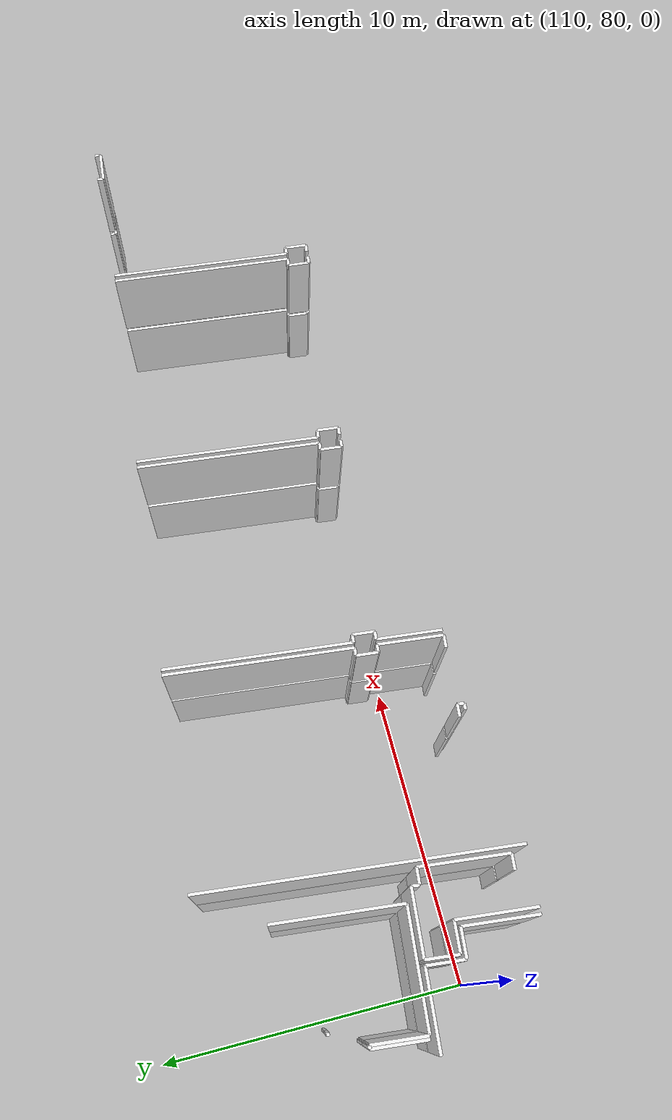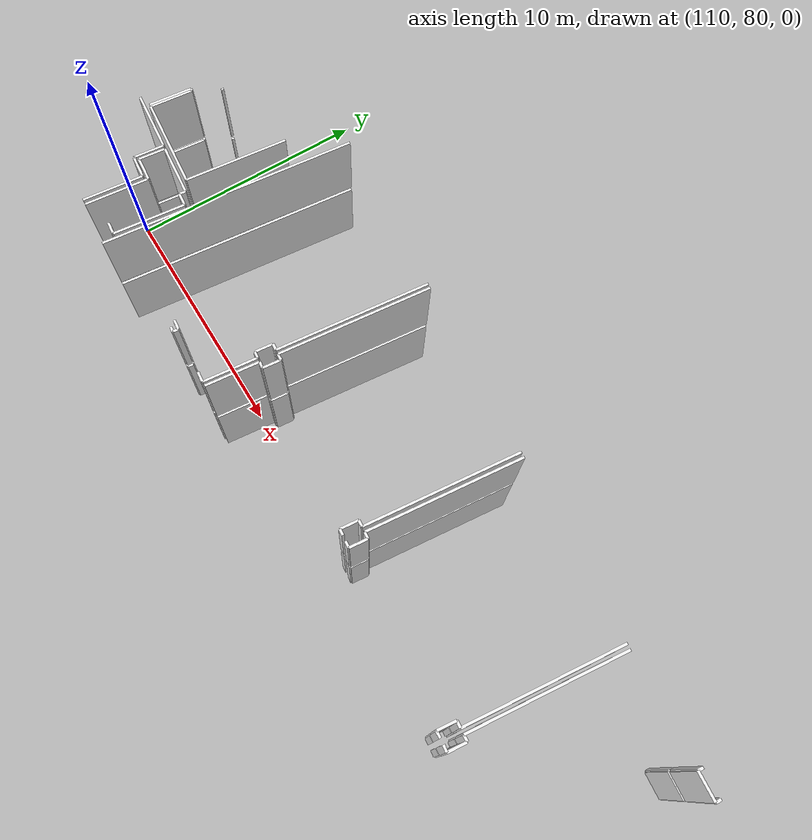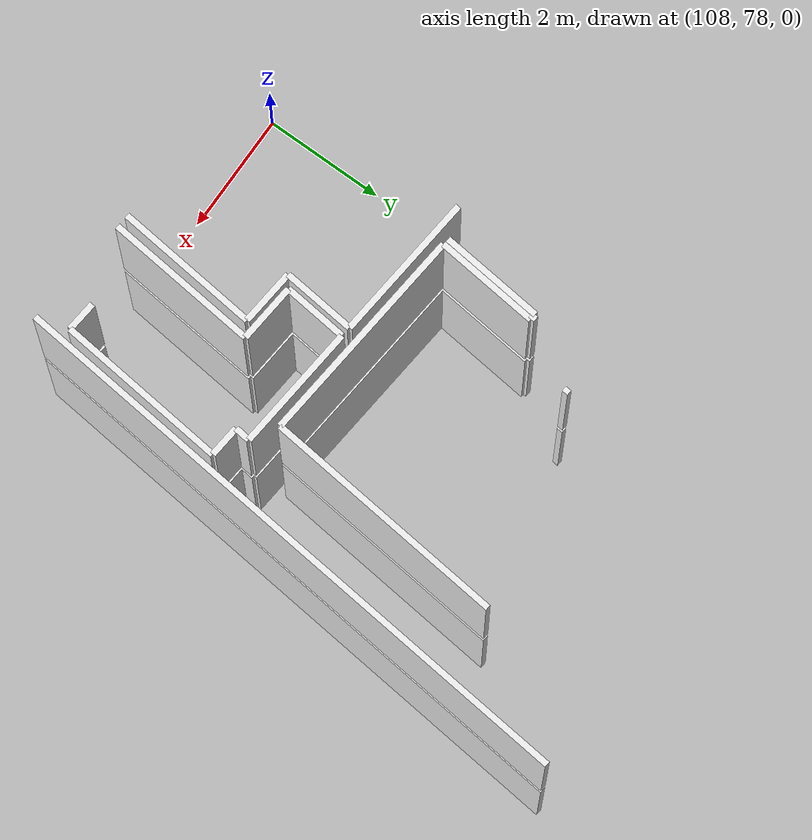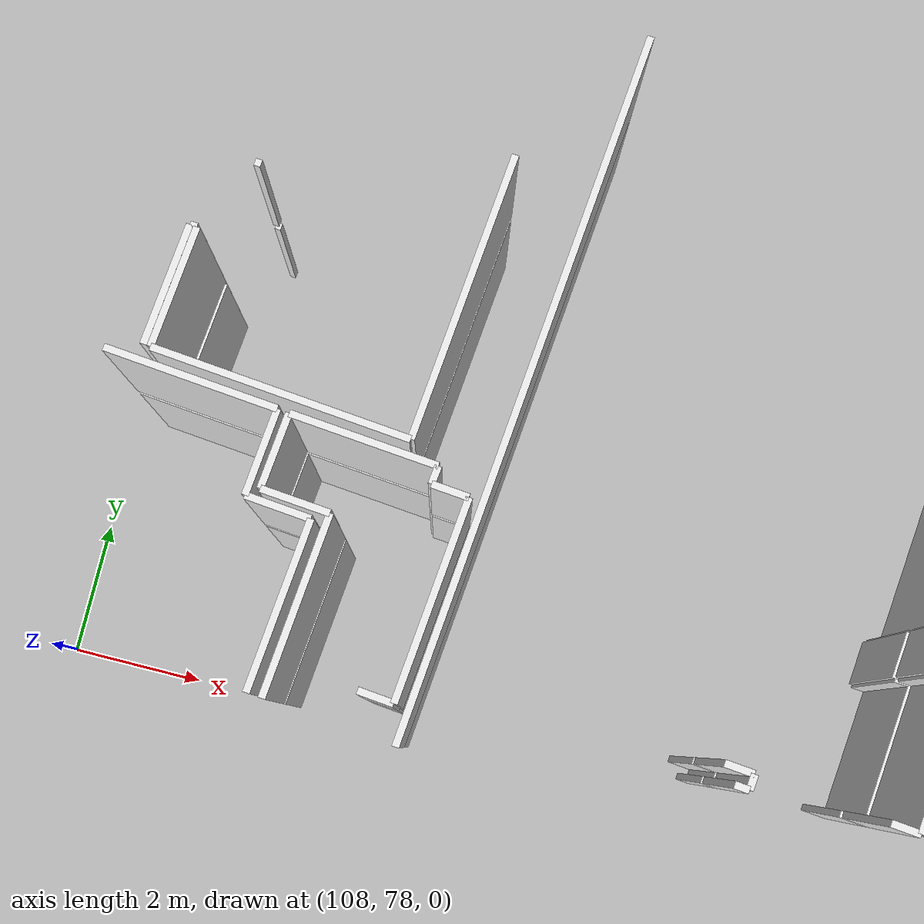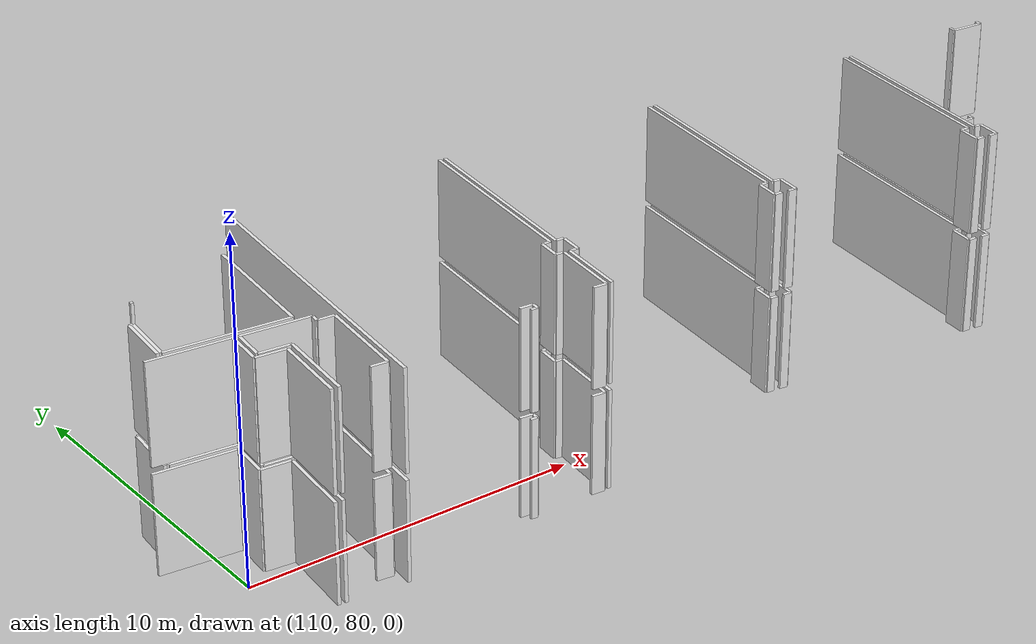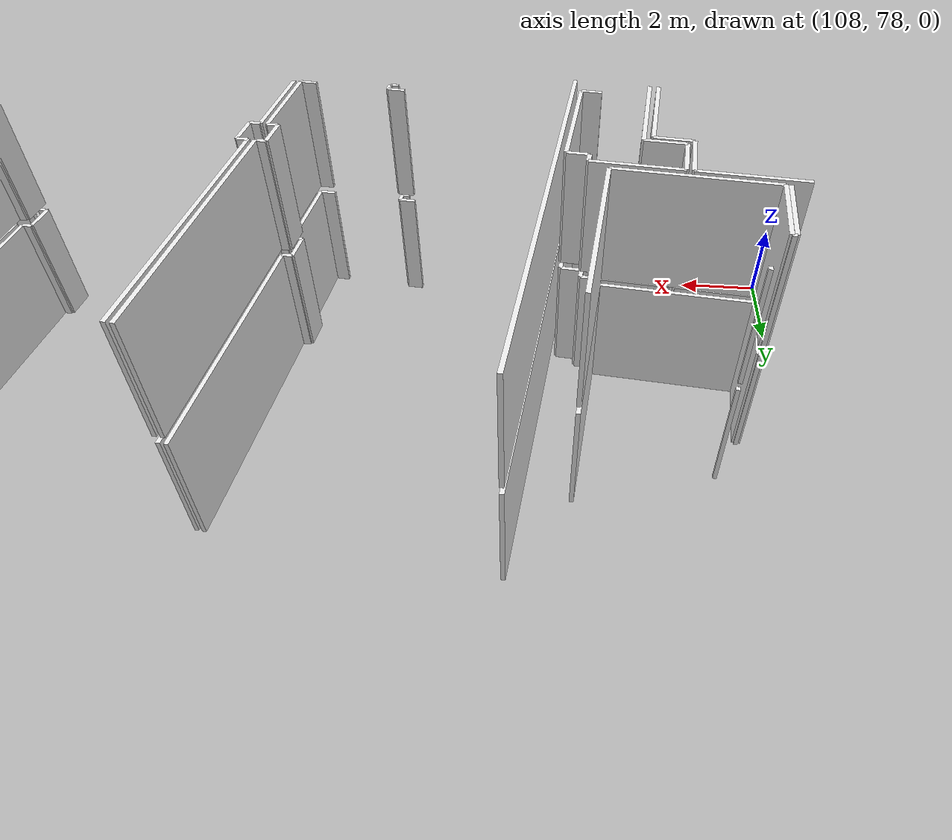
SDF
<sdf version="1.6">
 <world name="default">
  <model name="wall_134.5_79.0_0.0_link">
   <static>true</static>
   <pose>134.5349999999744 78.98500000010245 1.5 0 0 -0.11942892521040878</pose>
   <link name="link">
    <visual name="visual">
     <geometry><box><size>0.2517935662158716 0.1 3</size></box></geometry>
     <material>
      <script><uri>file://media/materials/scripts/gazebo.material</uri><name>Gazebo/White</name></script>
     </material>
    </visual>
   </link>
  </model>
  <model name="wall_134.7_79.3_0.0_link">
   <static>true</static>
   <pose>134.69499999997788 79.32000000006519 1.5 0 0 1.4711276742543362</pose>
   <link name="link">
    <visual name="visual">
     <geometry><box><size>0.7034912932011471 0.1 3</size></box></geometry>
     <material>
      <script><uri>file://media/materials/scripts/gazebo.material</uri><name>Gazebo/White</name></script>
     </material>
    </visual>
   </link>
  </model>
  <model name="wall_134.6_79.7_0.0_link">
   <static>true</static>
   <pose>134.60999999998603 79.67999999993481 1.5 0 0 3.0584514216210654</pose>
   <link name="link">
    <visual name="visual">
     <geometry><box><size>0.2408318915681117 0.1 3</size></box></geometry>
     <material>
      <script><uri>file://media/materials/scripts/gazebo.material</uri><name>Gazebo/White</name></script>
     </material>
    </visual>
   </link>
  </model>
  <model name="wall_134.8_82.6_0.0_link">
   <static>true</static>
   <pose>134.79000000000815 82.63500000000931 1.5 0 0 1.4692789369105257</pose>
   <link name="link">
    <visual name="visual">
     <geometry><box><size>5.920481399479087 0.1 3</size></box></geometry>
     <material>
      <script><uri>file://media/materials/scripts/gazebo.material</uri><name>Gazebo/White</name></script>
     </material>
    </visual>
   </link>
  </model>
  <model name="wall_139.5_85.1_0.0_link">
   <static>true</static>
   <pose>139.54999999998836 85.13000000012107 1.5 0 0 -0.09966865258337218</pose>
   <link name="link">
    <visual name="visual">
     <geometry><box><size>1.004987562121356 0.1 3</size></box></geometry>
     <material>
      <script><uri>file://media/materials/scripts/gazebo.material</uri><name>Gazebo/White</name></script>
     </material>
    </visual>
   </link>
  </model>
  <model name="wall_134.1_79.0_0.0_link">
   <static>true</static>
   <pose>134.08500000002095 79.03000000002794 1.5 0 0 3.061762667803524</pose>
   <link name="link">
    <visual name="visual">
     <geometry><box><size>0.25079872408117443 0.1 3</size></box></geometry>
     <material>
      <script><uri>file://media/materials/scripts/gazebo.material</uri><name>Gazebo/White</name></script>
     </material>
    </visual>
   </link>
  </model>
  <model name="wall_134.0_79.4_0.0_link">
   <static>true</static>
   <pose>133.99500000002445 79.39000000013039 1.5 0 0 1.4711276743202006</pose>
   <link name="link">
    <visual name="visual">
     <geometry><box><size>0.7034912936644975 0.1 3</size></box></geometry>
     <material>
      <script><uri>file://media/materials/scripts/gazebo.material</uri><name>Gazebo/White</name></script>
     </material>
    </visual>
   </link>
  </model>
  <model name="wall_134.2_79.7_0.0_link">
   <static>true</static>
   <pose>134.15500000002794 79.72500000009313 1.5 0 0 -0.11942892704661259</pose>
   <link name="link">
    <visual name="visual">
     <geometry><box><size>0.25179356627135296 0.1 3</size></box></geometry>
     <material>
      <script><uri>file://media/materials/scripts/gazebo.material</uri><name>Gazebo/White</name></script>
     </material>
    </visual>
   </link>
  </model>
  <model name="wall_134.6_82.7_0.0_link">
   <static>true</static>
   <pose>134.5800000000163 82.65999999991618 1.5 0 0 1.4694498235315459</pose>
   <link name="link">
    <visual name="visual">
     <geometry><box><size>5.9304300011780855 0.1 3</size></box></geometry>
     <material>
      <script><uri>file://media/materials/scripts/gazebo.material</uri><name>Gazebo/White</name></script>
     </material>
    </visual>
   </link>
  </model>
  <model name="wall_127.8_83.3_0.0_link">
   <static>true</static>
   <pose>127.79999999998836 83.34499999997206 1.5 0 0 -1.6719725158339418</pose>
   <link name="link">
    <visual name="visual">
     <geometry><box><size>5.940378775484714 0.1 3</size></box></geometry>
     <material>
      <script><uri>file://media/materials/scripts/gazebo.material</uri><name>Gazebo/White</name></script>
     </material>
    </visual>
   </link>
  </model>
  <model name="wall_127.6_80.4_0.0_link">
   <static>true</static>
   <pose>127.625 80.375 1.5 0 0 -0.11942892704661259</pose>
   <link name="link">
    <visual name="visual">
     <geometry><box><size>0.25179356627135296 0.1 3</size></box></geometry>
     <material>
      <script><uri>file://media/materials/scripts/gazebo.material</uri><name>Gazebo/White</name></script>
     </material>
    </visual>
   </link>
  </model>
  <model name="wall_127.7_80.0_0.0_link">
   <static>true</static>
   <pose>127.71499999999651 80.01499999989755 1.5 0 0 -1.6718996985493473</pose>
   <link name="link">
    <visual name="visual">
     <geometry><box><size>0.693541635321099 0.1 3</size></box></geometry>
     <material>
      <script><uri>file://media/materials/scripts/gazebo.material</uri><name>Gazebo/White</name></script>
     </material>
    </visual>
   </link>
  </model>
  <model name="wall_127.6_79.7_0.0_link">
   <static>true</static>
   <pose>127.55499999999302 79.68500000005588 1.5 0 0 3.0221637265431807</pose>
   <link name="link">
    <visual name="visual">
     <geometry><box><size>0.25179356627135296 0.1 3</size></box></geometry>
     <material>
      <script><uri>file://media/materials/scripts/gazebo.material</uri><name>Gazebo/White</name></script>
     </material>
    </visual>
   </link>
  </model>
  <model name="wall_113.4_79.7_0.0_link">
   <static>true</static>
   <pose>113.40499999999884 79.70999999996275 1.5 0 0 1.4668557173961834</pose>
   <link name="link">
    <visual name="visual">
     <geometry><box><size>2.7950849721319257 0.1 3</size></box></geometry>
     <material>
      <script><uri>file://media/materials/scripts/gazebo.material</uri><name>Gazebo/White</name></script>
     </material>
    </visual>
   </link>
  </model>
  <model name="wall_113.3_81.1_0.0_link">
   <static>true</static>
   <pose>113.2949999999837 81.125 1.5 0 0 3.0438657465945953</pose>
   <link name="link">
    <visual name="visual">
     <geometry><box><size>0.512445119003853 0.1 3</size></box></geometry>
     <material>
      <script><uri>file://media/materials/scripts/gazebo.material</uri><name>Gazebo/White</name></script>
     </material>
    </visual>
   </link>
  </model>
  <model name="wall_113.1_81.3_0.0_link">
   <static>true</static>
   <pose>113.05499999999302 81.27499999990687 1.5 0 0 1.451367400666386</pose>
   <link name="link">
    <visual name="visual">
     <geometry><box><size>0.2517935662436123 0.1 3</size></box></geometry>
     <material>
      <script><uri>file://media/materials/scripts/gazebo.material</uri><name>Gazebo/White</name></script>
     </material>
    </visual>
   </link>
  </model>
  <model name="wall_112.1_81.5_0.0_link">
   <static>true</static>
   <pose>112.05000000001746 81.5 1.5 0 0 3.04386574613964</pose>
   <link name="link">
    <visual name="visual">
     <geometry><box><size>2.0497804760483525 0.1 3</size></box></geometry>
     <material>
      <script><uri>file://media/materials/scripts/gazebo.material</uri><name>Gazebo/White</name></script>
     </material>
    </visual>
   </link>
  </model>
  <model name="wall_111.0_81.1_0.0_link">
   <static>true</static>
   <pose>110.97500000000582 81.0800000000745 1.5 0 0 -1.676173766022158</pose>
   <link name="link">
    <visual name="visual">
     <geometry><box><size>1.0458011283639057 0.1 3</size></box></geometry>
     <material>
      <script><uri>file://media/materials/scripts/gazebo.material</uri><name>Gazebo/White</name></script>
     </material>
    </visual>
   </link>
  </model>
  <model name="wall_111.4_80.5_0.0_link">
   <static>true</static>
   <pose>111.39499999998952 80.51500000013039 1.5 0 0 -0.09445493523843698</pose>
   <link name="link">
    <visual name="visual">
     <geometry><box><size>0.9542536350443193 0.1 3</size></box></geometry>
     <material>
      <script><uri>file://media/materials/scripts/gazebo.material</uri><name>Gazebo/White</name></script>
     </material>
    </visual>
   </link>
  </model>
  <model name="wall_111.7_79.2_0.0_link">
   <static>true</static>
   <pose>111.74499999999534 79.22500000009313 1.5 0 0 -1.6708625935702974</pose>
   <link name="link">
    <visual name="visual">
     <geometry><box><size>2.502518731421029 0.1 3</size></box></geometry>
     <material>
      <script><uri>file://media/materials/scripts/gazebo.material</uri><name>Gazebo/White</name></script>
     </material>
    </visual>
   </link>
  </model>
  <model name="wall_113.0_78.3_0.0_link">
   <static>true</static>
   <pose>113.01500000001397 78.34499999997206 1.5 0 0 -0.1016888523293181</pose>
   <link name="link">
    <visual name="visual">
     <geometry><box><size>0.49254441426008755 0.1 3</size></box></geometry>
     <material>
      <script><uri>file://media/materials/scripts/gazebo.material</uri><name>Gazebo/White</name></script>
     </material>
    </visual>
   </link>
  </model>
  <model name="wall_109.7_81.7_0.0_link">
   <static>true</static>
   <pose>109.6699999999837 81.73999999999069 1.5 0 0 3.041924001199486</pose>
   <link name="link">
    <visual name="visual">
     <geometry><box><size>2.411970149068087 0.1 3</size></box></geometry>
     <material>
      <script><uri>file://media/materials/scripts/gazebo.material</uri><name>Gazebo/White</name></script>
     </material>
    </visual>
   </link>
  </model>
  <model name="wall_111.5_79.2_0.0_link">
   <static>true</static>
   <pose>111.52999999999884 79.1699999999255 1.5 0 0 1.4685896086605021</pose>
   <link name="link">
    <visual name="visual">
     <geometry><box><size>2.3522754939262738 0.1 3</size></box></geometry>
     <material>
      <script><uri>file://media/materials/scripts/gazebo.material</uri><name>Gazebo/White</name></script>
     </material>
    </visual>
   </link>
  </model>
  <model name="wall_111.2_80.4_0.0_link">
   <static>true</static>
   <pose>111.20000000001164 80.38500000000931 1.5 0 0 3.041924000752843</pose>
   <link name="link">
    <visual name="visual">
     <geometry><box><size>0.9044888059555555 0.1 3</size></box></geometry>
     <material>
      <script><uri>file://media/materials/scripts/gazebo.material</uri><name>Gazebo/White</name></script>
     </material>
    </visual>
   </link>
  </model>
  <model name="wall_110.8_81.0_0.0_link">
   <static>true</static>
   <pose>110.80999999999767 81.0250000001397 1.5 0 0 1.470295727739453</pose>
   <link name="link">
    <visual name="visual">
     <geometry><box><size>1.1960351164852516 0.1 3</size></box></geometry>
     <material>
      <script><uri>file://media/materials/scripts/gazebo.material</uri><name>Gazebo/White</name></script>
     </material>
    </visual>
   </link>
  </model>
  <model name="wall_109.8_84.7_0.0_link">
   <static>true</static>
   <pose>109.78500000000349 84.73500000010245 1.5 0 0 -0.11065722380033888</pose>
   <link name="link">
    <visual name="visual">
     <geometry><box><size>0.0905538514335692 0.1 3</size></box></geometry>
     <material>
      <script><uri>file://media/materials/scripts/gazebo.material</uri><name>Gazebo/White</name></script>
     </material>
    </visual>
   </link>
  </model>
  <model name="wall_112.8_83.7_0.0_link">
   <static>true</static>
   <pose>112.84500000000116 83.65500000002794 1.5 0 0 -1.6726866492791923</pose>
   <link name="link">
    <visual name="visual">
     <geometry><box><size>4.0309056056823005 0.1 3</size></box></geometry>
     <material>
      <script><uri>file://media/materials/scripts/gazebo.material</uri><name>Gazebo/White</name></script>
     </material>
    </visual>
   </link>
  </model>
  <model name="wall_110.9_81.8_0.0_link">
   <static>true</static>
   <pose>110.85000000000582 81.82999999984168 1.5 0 0 3.041370903846408</pose>
   <link name="link">
    <visual name="visual">
     <geometry><box><size>3.5980550301548777 0.1 3</size></box></geometry>
     <material>
      <script><uri>file://media/materials/scripts/gazebo.material</uri><name>Gazebo/White</name></script>
     </material>
    </visual>
   </link>
  </model>
  <model name="wall_109.1_82.9_0.0_link">
   <static>true</static>
   <pose>109.14499999998952 82.85499999998137 1.5 0 0 1.470541851323015</pose>
   <link name="link">
    <visual name="visual">
     <geometry><box><size>1.698528775552396 0.1 3</size></box></geometry>
     <material>
      <script><uri>file://media/materials/scripts/gazebo.material</uri><name>Gazebo/White</name></script>
     </material>
    </visual>
   </link>
  </model>
  <model name="wall_109.2_83.7_0.0_link">
   <static>true</static>
   <pose>109.17999999999302 83.7050000000745 1.5 0 0 3.0419240032886226</pose>
   <link name="link">
    <visual name="visual">
     <geometry><box><size>0.10049875616580058 0.1 3</size></box></geometry>
     <material>
      <script><uri>file://media/materials/scripts/gazebo.material</uri><name>Gazebo/White</name></script>
     </material>
    </visual>
   </link>
  </model>
  <model name="wall_109.0_82.9_0.0_link">
   <static>true</static>
   <pose>109.0450000000128 82.86499999999069 1.5 0 0 -1.6710508022942177</pose>
   <link name="link">
    <visual name="visual">
     <geometry><box><size>1.698528775089073 0.1 3</size></box></geometry>
     <material>
      <script><uri>file://media/materials/scripts/gazebo.material</uri><name>Gazebo/White</name></script>
     </material>
    </visual>
   </link>
  </model>
  <model name="wall_127.1_79.7_0.0_link">
   <static>true</static>
   <pose>127.10999999998603 79.7300000002142 1.5 0 0 3.0584514216210654</pose>
   <link name="link">
    <visual name="visual">
     <geometry><box><size>0.2408318915681117 0.1 3</size></box></geometry>
     <material>
      <script><uri>file://media/materials/scripts/gazebo.material</uri><name>Gazebo/White</name></script>
     </material>
    </visual>
   </link>
  </model>
  <model name="wall_127.0_80.1_0.0_link">
   <static>true</static>
   <pose>127.02499999999418 80.08500000019558 1.5 0 0 1.469692955040446</pose>
   <link name="link">
    <visual name="visual">
     <geometry><box><size>0.693541635321099 0.1 3</size></box></geometry>
     <material>
      <script><uri>file://media/materials/scripts/gazebo.material</uri><name>Gazebo/White</name></script>
     </material>
    </visual>
   </link>
  </model>
  <model name="wall_127.2_80.4_0.0_link">
   <static>true</static>
   <pose>127.17999999999302 80.42000000015832 1.5 0 0 -0.08314123196872766</pose>
   <link name="link">
    <visual name="visual">
     <geometry><box><size>0.2408318915681117 0.1 3</size></box></geometry>
     <material>
      <script><uri>file://media/materials/scripts/gazebo.material</uri><name>Gazebo/White</name></script>
     </material>
    </visual>
   </link>
  </model>
  <model name="wall_127.6_83.4_0.0_link">
   <static>true</static>
   <pose>127.60000000000582 83.36499999999069 1.5 0 0 1.469620137746103</pose>
   <link name="link">
    <visual name="visual">
     <geometry><box><size>5.940378775490593 0.1 3</size></box></geometry>
     <material>
      <script><uri>file://media/materials/scripts/gazebo.material</uri><name>Gazebo/White</name></script>
     </material>
    </visual>
   </link>
  </model>
  <model name="wall_120.8_84.0_0.0_link">
   <static>true</static>
   <pose>120.82000000000698 84.0449999999255 1.5 0 0 -1.6719725158260241</pose>
   <link name="link">
    <visual name="visual">
     <geometry><box><size>5.940378775947993 0.1 3</size></box></geometry>
     <material>
      <script><uri>file://media/materials/scripts/gazebo.material</uri><name>Gazebo/White</name></script>
     </material>
    </visual>
   </link>
  </model>
  <model name="wall_120.6_81.1_0.0_link">
   <static>true</static>
   <pose>120.64500000001863 81.07999999984168 1.5 0 0 -0.07982998578626932</pose>
   <link name="link">
    <visual name="visual">
     <geometry><box><size>0.25079872408117443 0.1 3</size></box></geometry>
     <material>
      <script><uri>file://media/materials/scripts/gazebo.material</uri><name>Gazebo/White</name></script>
     </material>
    </visual>
   </link>
  </model>
  <model name="wall_120.7_80.7_0.0_link">
   <static>true</static>
   <pose>120.73500000001513 80.71999999997206 1.5 0 0 -1.670464979335457</pose>
   <link name="link">
    <visual name="visual">
     <geometry><box><size>0.7034912932011471 0.1 3</size></box></geometry>
     <material>
      <script><uri>file://media/materials/scripts/gazebo.material</uri><name>Gazebo/White</name></script>
     </material>
    </visual>
   </link>
  </model>
  <model name="wall_120.6_80.4_0.0_link">
   <static>true</static>
   <pose>120.57500000001164 80.38500000000931 1.5 0 0 3.0221637283793843</pose>
   <link name="link">
    <visual name="visual">
     <geometry><box><size>0.2517935662158716 0.1 3</size></box></geometry>
     <material>
      <script><uri>file://media/materials/scripts/gazebo.material</uri><name>Gazebo/White</name></script>
     </material>
    </visual>
   </link>
  </model>
  <model name="wall_120.3_79.4_0.0_link">
   <static>true</static>
   <pose>120.34500000000116 79.36999999987893 1.5 0 0 -1.672387129737302</pose>
   <link name="link">
    <visual name="visual">
     <geometry><box><size>2.070676218108235 0.1 3</size></box></geometry>
     <material>
      <script><uri>file://media/materials/scripts/gazebo.material</uri><name>Gazebo/White</name></script>
     </material>
    </visual>
   </link>
  </model>
  <model name="wall_119.9_78.4_0.0_link">
   <static>true</static>
   <pose>119.86999999999534 78.37000000011176 1.5 0 0 -0.09966865257760905</pose>
   <link name="link">
    <visual name="visual">
     <geometry><box><size>0.40199502487170996 0.1 3</size></box></geometry>
     <material>
      <script><uri>file://media/materials/scripts/gazebo.material</uri><name>Gazebo/White</name></script>
     </material>
    </visual>
   </link>
  </model>
  <model name="wall_120.2_79.4_0.0_link">
   <static>true</static>
   <pose>120.17500000001746 79.38500000000931 1.5 0 0 1.469692955040446</pose>
   <link name="link">
    <visual name="visual">
     <geometry><box><size>2.0806249059632975 0.1 3</size></box></geometry>
     <material>
      <script><uri>file://media/materials/scripts/gazebo.material</uri><name>Gazebo/White</name></script>
     </material>
    </visual>
   </link>
  </model>
  <model name="wall_120.2_80.4_0.0_link">
   <static>true</static>
   <pose>120.15500000002794 80.42999999993481 1.5 0 0 3.061762667803524</pose>
   <link name="link">
    <visual name="visual">
     <geometry><box><size>0.25079872408117443 0.1 3</size></box></geometry>
     <material>
      <script><uri>file://media/materials/scripts/gazebo.material</uri><name>Gazebo/White</name></script>
     </material>
    </visual>
   </link>
  </model>
  <model name="wall_120.1_80.8_0.0_link">
   <static>true</static>
   <pose>120.06500000000233 80.78499999991618 1.5 0 0 1.4696929551239455</pose>
   <link name="link">
    <visual name="visual">
     <geometry><box><size>0.6935416353152241 0.1 3</size></box></geometry>
     <material>
      <script><uri>file://media/materials/scripts/gazebo.material</uri><name>Gazebo/White</name></script>
     </material>
    </visual>
   </link>
  </model>
  <model name="wall_120.2_81.1_0.0_link">
   <static>true</static>
   <pose>120.22499999997672 81.11999999987893 1.5 0 0 -0.07982998578626932</pose>
   <link name="link">
    <visual name="visual">
     <geometry><box><size>0.25079872408117443 0.1 3</size></box></geometry>
     <material>
      <script><uri>file://media/materials/scripts/gazebo.material</uri><name>Gazebo/White</name></script>
     </material>
    </visual>
   </link>
  </model>
  <model name="wall_120.6_84.1_0.0_link">
   <static>true</static>
   <pose>120.64999999999418 84.06499999994412 1.5 0 0 1.4696201377540206</pose>
   <link name="link">
    <visual name="visual">
     <geometry><box><size>5.940378775953872 0.1 3</size></box></geometry>
     <material>
      <script><uri>file://media/materials/scripts/gazebo.material</uri><name>Gazebo/White</name></script>
     </material>
    </visual>
   </link>
  </model>
  <model name="wall_113.9_82.7_0.0_link">
   <static>true</static>
   <pose>113.90999999997439 82.73999999999069 1.5 0 0 -1.6716673835126197</pose>
   <link name="link">
    <visual name="visual">
     <geometry><box><size>9.93047833727022 0.1 3</size></box></geometry>
     <material>
      <script><uri>file://media/materials/scripts/gazebo.material</uri><name>Gazebo/White</name></script>
     </material>
    </visual>
   </link>
  </model>
  <model name="wall_117.7_78.6_0.0_link">
   <static>true</static>
   <pose>117.67999999999302 78.58999999985099 1.5 0 0 -0.09966865257760905</pose>
   <link name="link">
    <visual name="visual">
     <geometry><box><size>0.40199502487170996 0.1 3</size></box></geometry>
     <material>
      <script><uri>file://media/materials/scripts/gazebo.material</uri><name>Gazebo/White</name></script>
     </material>
    </visual>
   </link>
  </model>
  <model name="wall_117.9_78.5_0.0_link">
   <static>true</static>
   <pose>117.86999999999534 78.46499999985099 1.5 0 0 -1.665748033242296</pose>
   <link name="link">
    <visual name="visual">
     <geometry><box><size>0.21095023106197072 0.1 3</size></box></geometry>
     <material>
      <script><uri>file://media/materials/scripts/gazebo.material</uri><name>Gazebo/White</name></script>
     </material>
    </visual>
   </link>
  </model>
  <model name="wall_117.8_78.4_0.0_link">
   <static>true</static>
   <pose>117.75999999998021 78.36999999987893 1.5 0 0 3.0419240010121844</pose>
   <link name="link">
    <visual name="visual">
     <geometry><box><size>0.20099751243585498 0.1 3</size></box></geometry>
     <material>
      <script><uri>file://media/materials/scripts/gazebo.material</uri><name>Gazebo/White</name></script>
     </material>
    </visual>
   </link>
  </model>
  <model name="wall_139.1_85.3_0.0_link">
   <static>true</static>
   <pose>139.05999999999767 85.28000000002794 1.5 0 0 -1.670464979516584</pose>
   <link name="link">
    <visual name="visual">
     <geometry><box><size>0.20099751214626105 0.1 3</size></box></geometry>
     <material>
      <script><uri>file://media/materials/scripts/gazebo.material</uri><name>Gazebo/White</name></script>
     </material>
    </visual>
   </link>
  </model>
  <model name="wall_140.1_85.2_0.0_link">
   <static>true</static>
   <pose>140.05999999999767 85.17999999993481 1.5 0 0 1.471127674073209</pose>
   <link name="link">
    <visual name="visual">
     <geometry><box><size>0.20099751214626105 0.1 3</size></box></geometry>
     <material>
      <script><uri>file://media/materials/scripts/gazebo.material</uri><name>Gazebo/White</name></script>
     </material>
    </visual>
   </link>
  </model>
  <model name="wall_134.5_79.0_3.2_link">
   <static>true</static>
   <pose>134.5349999999744 78.98500000010245 4.7 0 0 -0.11942892521040878</pose>
   <link name="link">
    <visual name="visual">
     <geometry><box><size>0.2517935662158716 0.1 3</size></box></geometry>
     <material>
      <script><uri>file://media/materials/scripts/gazebo.material</uri><name>Gazebo/White</name></script>
     </material>
    </visual>
   </link>
  </model>
  <model name="wall_134.7_79.3_3.2_link">
   <static>true</static>
   <pose>134.69499999997788 79.32000000006519 4.7 0 0 1.4711276742543362</pose>
   <link name="link">
    <visual name="visual">
     <geometry><box><size>0.7034912932011471 0.1 3</size></box></geometry>
     <material>
      <script><uri>file://media/materials/scripts/gazebo.material</uri><name>Gazebo/White</name></script>
     </material>
    </visual>
   </link>
  </model>
  <model name="wall_134.6_79.7_3.2_link">
   <static>true</static>
   <pose>134.60999999998603 79.67999999993481 4.7 0 0 3.0584514216210654</pose>
   <link name="link">
    <visual name="visual">
     <geometry><box><size>0.2408318915681117 0.1 3</size></box></geometry>
     <material>
      <script><uri>file://media/materials/scripts/gazebo.material</uri><name>Gazebo/White</name></script>
     </material>
    </visual>
   </link>
  </model>
  <model name="wall_134.8_82.6_3.2_link">
   <static>true</static>
   <pose>134.79000000000815 82.63500000000931 4.7 0 0 1.4692789369105257</pose>
   <link name="link">
    <visual name="visual">
     <geometry><box><size>5.920481399479087 0.1 3</size></box></geometry>
     <material>
      <script><uri>file://media/materials/scripts/gazebo.material</uri><name>Gazebo/White</name></script>
     </material>
    </visual>
   </link>
  </model>
  <model name="wall_139.5_85.1_3.2_link">
   <static>true</static>
   <pose>139.54999999998836 85.13000000012107 4.7 0 0 -0.09966865258337218</pose>
   <link name="link">
    <visual name="visual">
     <geometry><box><size>1.004987562121356 0.1 3</size></box></geometry>
     <material>
      <script><uri>file://media/materials/scripts/gazebo.material</uri><name>Gazebo/White</name></script>
     </material>
    </visual>
   </link>
  </model>
  <model name="wall_134.1_79.0_3.2_link">
   <static>true</static>
   <pose>134.08500000002095 79.03000000002794 4.7 0 0 3.061762667803524</pose>
   <link name="link">
    <visual name="visual">
     <geometry><box><size>0.25079872408117443 0.1 3</size></box></geometry>
     <material>
      <script><uri>file://media/materials/scripts/gazebo.material</uri><name>Gazebo/White</name></script>
     </material>
    </visual>
   </link>
  </model>
  <model name="wall_134.0_79.4_3.2_link">
   <static>true</static>
   <pose>133.99500000002445 79.39000000013039 4.7 0 0 1.4711276743202006</pose>
   <link name="link">
    <visual name="visual">
     <geometry><box><size>0.7034912936644975 0.1 3</size></box></geometry>
     <material>
      <script><uri>file://media/materials/scripts/gazebo.material</uri><name>Gazebo/White</name></script>
     </material>
    </visual>
   </link>
  </model>
  <model name="wall_134.2_79.7_3.2_link">
   <static>true</static>
   <pose>134.15500000002794 79.72500000009313 4.7 0 0 -0.11942892704661259</pose>
   <link name="link">
    <visual name="visual">
     <geometry><box><size>0.25179356627135296 0.1 3</size></box></geometry>
     <material>
      <script><uri>file://media/materials/scripts/gazebo.material</uri><name>Gazebo/White</name></script>
     </material>
    </visual>
   </link>
  </model>
  <model name="wall_134.6_82.7_3.2_link">
   <static>true</static>
   <pose>134.5800000000163 82.65999999991618 4.7 0 0 1.4694498235315459</pose>
   <link name="link">
    <visual name="visual">
     <geometry><box><size>5.9304300011780855 0.1 3</size></box></geometry>
     <material>
      <script><uri>file://media/materials/scripts/gazebo.material</uri><name>Gazebo/White</name></script>
     </material>
    </visual>
   </link>
  </model>
  <model name="wall_127.8_83.3_3.2_link">
   <static>true</static>
   <pose>127.79999999998836 83.34499999997206 4.7 0 0 -1.6719725158339418</pose>
   <link name="link">
    <visual name="visual">
     <geometry><box><size>5.940378775484714 0.1 3</size></box></geometry>
     <material>
      <script><uri>file://media/materials/scripts/gazebo.material</uri><name>Gazebo/White</name></script>
     </material>
    </visual>
   </link>
  </model>
  <model name="wall_127.6_80.4_3.2_link">
   <static>true</static>
   <pose>127.625 80.375 4.7 0 0 -0.11942892704661259</pose>
   <link name="link">
    <visual name="visual">
     <geometry><box><size>0.25179356627135296 0.1 3</size></box></geometry>
     <material>
      <script><uri>file://media/materials/scripts/gazebo.material</uri><name>Gazebo/White</name></script>
     </material>
    </visual>
   </link>
  </model>
  <model name="wall_127.7_80.0_3.2_link">
   <static>true</static>
   <pose>127.71499999999651 80.01499999989755 4.7 0 0 -1.6718996985493473</pose>
   <link name="link">
    <visual name="visual">
     <geometry><box><size>0.693541635321099 0.1 3</size></box></geometry>
     <material>
      <script><uri>file://media/materials/scripts/gazebo.material</uri><name>Gazebo/White</name></script>
     </material>
    </visual>
   </link>
  </model>
  <model name="wall_127.6_79.7_3.2_link">
   <static>true</static>
   <pose>127.55499999999302 79.68500000005588 4.7 0 0 3.0221637265431807</pose>
   <link name="link">
    <visual name="visual">
     <geometry><box><size>0.25179356627135296 0.1 3</size></box></geometry>
     <material>
      <script><uri>file://media/materials/scripts/gazebo.material</uri><name>Gazebo/White</name></script>
     </material>
    </visual>
   </link>
  </model>
  <model name="wall_113.4_79.7_3.2_link">
   <static>true</static>
   <pose>113.40499999999884 79.70999999996275 4.7 0 0 1.4668557173961834</pose>
   <link name="link">
    <visual name="visual">
     <geometry><box><size>2.7950849721319257 0.1 3</size></box></geometry>
     <material>
      <script><uri>file://media/materials/scripts/gazebo.material</uri><name>Gazebo/White</name></script>
     </material>
    </visual>
   </link>
  </model>
  <model name="wall_113.3_81.1_3.2_link">
   <static>true</static>
   <pose>113.2949999999837 81.125 4.7 0 0 3.0438657465945953</pose>
   <link name="link">
    <visual name="visual">
     <geometry><box><size>0.512445119003853 0.1 3</size></box></geometry>
     <material>
      <script><uri>file://media/materials/scripts/gazebo.material</uri><name>Gazebo/White</name></script>
     </material>
    </visual>
   </link>
  </model>
  <model name="wall_113.1_81.3_3.2_link">
   <static>true</static>
   <pose>113.05499999999302 81.27499999990687 4.7 0 0 1.451367400666386</pose>
   <link name="link">
    <visual name="visual">
     <geometry><box><size>0.2517935662436123 0.1 3</size></box></geometry>
     <material>
      <script><uri>file://media/materials/scripts/gazebo.material</uri><name>Gazebo/White</name></script>
     </material>
    </visual>
   </link>
  </model>
  <model name="wall_112.1_81.5_3.2_link">
   <static>true</static>
   <pose>112.05000000001746 81.5 4.7 0 0 3.04386574613964</pose>
   <link name="link">
    <visual name="visual">
     <geometry><box><size>2.0497804760483525 0.1 3</size></box></geometry>
     <material>
      <script><uri>file://media/materials/scripts/gazebo.material</uri><name>Gazebo/White</name></script>
     </material>
    </visual>
   </link>
  </model>
  <model name="wall_111.0_81.1_3.2_link">
   <static>true</static>
   <pose>110.97500000000582 81.0800000000745 4.7 0 0 -1.676173766022158</pose>
   <link name="link">
    <visual name="visual">
     <geometry><box><size>1.0458011283639057 0.1 3</size></box></geometry>
     <material>
      <script><uri>file://media/materials/scripts/gazebo.material</uri><name>Gazebo/White</name></script>
     </material>
    </visual>
   </link>
  </model>
  <model name="wall_111.4_80.5_3.2_link">
   <static>true</static>
   <pose>111.39499999998952 80.51500000013039 4.7 0 0 -0.09445493523843698</pose>
   <link name="link">
    <visual name="visual">
     <geometry><box><size>0.9542536350443193 0.1 3</size></box></geometry>
     <material>
      <script><uri>file://media/materials/scripts/gazebo.material</uri><name>Gazebo/White</name></script>
     </material>
    </visual>
   </link>
  </model>
  <model name="wall_111.7_79.2_3.2_link">
   <static>true</static>
   <pose>111.74499999999534 79.22500000009313 4.7 0 0 -1.6708625935702974</pose>
   <link name="link">
    <visual name="visual">
     <geometry><box><size>2.502518731421029 0.1 3</size></box></geometry>
     <material>
      <script><uri>file://media/materials/scripts/gazebo.material</uri><name>Gazebo/White</name></script>
     </material>
    </visual>
   </link>
  </model>
  <model name="wall_113.0_78.3_3.2_link">
   <static>true</static>
   <pose>113.01500000001397 78.34499999997206 4.7 0 0 -0.1016888523293181</pose>
   <link name="link">
    <visual name="visual">
     <geometry><box><size>0.49254441426008755 0.1 3</size></box></geometry>
     <material>
      <script><uri>file://media/materials/scripts/gazebo.material</uri><name>Gazebo/White</name></script>
     </material>
    </visual>
   </link>
  </model>
  <model name="wall_109.7_81.7_3.2_link">
   <static>true</static>
   <pose>109.6699999999837 81.73999999999069 4.7 0 0 3.041924001199486</pose>
   <link name="link">
    <visual name="visual">
     <geometry><box><size>2.411970149068087 0.1 3</size></box></geometry>
     <material>
      <script><uri>file://media/materials/scripts/gazebo.material</uri><name>Gazebo/White</name></script>
     </material>
    </visual>
   </link>
  </model>
  <model name="wall_111.5_79.2_3.2_link">
   <static>true</static>
   <pose>111.52999999999884 79.1699999999255 4.7 0 0 1.4685896086605021</pose>
   <link name="link">
    <visual name="visual">
     <geometry><box><size>2.3522754939262738 0.1 3</size></box></geometry>
     <material>
      <script><uri>file://media/materials/scripts/gazebo.material</uri><name>Gazebo/White</name></script>
     </material>
    </visual>
   </link>
  </model>
  <model name="wall_111.2_80.4_3.2_link">
   <static>true</static>
   <pose>111.20000000001164 80.38500000000931 4.7 0 0 3.041924000752843</pose>
   <link name="link">
    <visual name="visual">
     <geometry><box><size>0.9044888059555555 0.1 3</size></box></geometry>
     <material>
      <script><uri>file://media/materials/scripts/gazebo.material</uri><name>Gazebo/White</name></script>
     </material>
    </visual>
   </link>
  </model>
  <model name="wall_110.8_81.0_3.2_link">
   <static>true</static>
   <pose>110.80999999999767 81.0250000001397 4.7 0 0 1.470295727739453</pose>
   <link name="link">
    <visual name="visual">
     <geometry><box><size>1.1960351164852516 0.1 3</size></box></geometry>
     <material>
      <script><uri>file://media/materials/scripts/gazebo.material</uri><name>Gazebo/White</name></script>
     </material>
    </visual>
   </link>
  </model>
  <model name="wall_109.8_84.7_3.2_link">
   <static>true</static>
   <pose>109.78500000000349 84.73500000010245 4.7 0 0 -0.11065722380033888</pose>
   <link name="link">
    <visual name="visual">
     <geometry><box><size>0.0905538514335692 0.1 3</size></box></geometry>
     <material>
      <script><uri>file://media/materials/scripts/gazebo.material</uri><name>Gazebo/White</name></script>
     </material>
    </visual>
   </link>
  </model>
  <model name="wall_112.8_83.7_3.2_link">
   <static>true</static>
   <pose>112.84500000000116 83.65500000002794 4.7 0 0 -1.6726866492791923</pose>
   <link name="link">
    <visual name="visual">
     <geometry><box><size>4.0309056056823005 0.1 3</size></box></geometry>
     <material>
      <script><uri>file://media/materials/scripts/gazebo.material</uri><name>Gazebo/White</name></script>
     </material>
    </visual>
   </link>
  </model>
  <model name="wall_110.9_81.8_3.2_link">
   <static>true</static>
   <pose>110.85000000000582 81.82999999984168 4.7 0 0 3.041370903846408</pose>
   <link name="link">
    <visual name="visual">
     <geometry><box><size>3.5980550301548777 0.1 3</size></box></geometry>
     <material>
      <script><uri>file://media/materials/scripts/gazebo.material</uri><name>Gazebo/White</name></script>
     </material>
    </visual>
   </link>
  </model>
  <model name="wall_109.1_82.9_3.2_link">
   <static>true</static>
   <pose>109.14499999998952 82.85499999998137 4.7 0 0 1.470541851323015</pose>
   <link name="link">
    <visual name="visual">
     <geometry><box><size>1.698528775552396 0.1 3</size></box></geometry>
     <material>
      <script><uri>file://media/materials/scripts/gazebo.material</uri><name>Gazebo/White</name></script>
     </material>
    </visual>
   </link>
  </model>
  <model name="wall_109.2_83.7_3.2_link">
   <static>true</static>
   <pose>109.17999999999302 83.7050000000745 4.7 0 0 3.0419240032886226</pose>
   <link name="link">
    <visual name="visual">
     <geometry><box><size>0.10049875616580058 0.1 3</size></box></geometry>
     <material>
      <script><uri>file://media/materials/scripts/gazebo.material</uri><name>Gazebo/White</name></script>
     </material>
    </visual>
   </link>
  </model>
  <model name="wall_109.0_82.9_3.2_link">
   <static>true</static>
   <pose>109.0450000000128 82.86499999999069 4.7 0 0 -1.6710508022942177</pose>
   <link name="link">
    <visual name="visual">
     <geometry><box><size>1.698528775089073 0.1 3</size></box></geometry>
     <material>
      <script><uri>file://media/materials/scripts/gazebo.material</uri><name>Gazebo/White</name></script>
     </material>
    </visual>
   </link>
  </model>
  <model name="wall_127.1_79.7_3.2_link">
   <static>true</static>
   <pose>127.10999999998603 79.7300000002142 4.7 0 0 3.0584514216210654</pose>
   <link name="link">
    <visual name="visual">
     <geometry><box><size>0.2408318915681117 0.1 3</size></box></geometry>
     <material>
      <script><uri>file://media/materials/scripts/gazebo.material</uri><name>Gazebo/White</name></script>
     </material>
    </visual>
   </link>
  </model>
  <model name="wall_127.0_80.1_3.2_link">
   <static>true</static>
   <pose>127.02499999999418 80.08500000019558 4.7 0 0 1.469692955040446</pose>
   <link name="link">
    <visual name="visual">
     <geometry><box><size>0.693541635321099 0.1 3</size></box></geometry>
     <material>
      <script><uri>file://media/materials/scripts/gazebo.material</uri><name>Gazebo/White</name></script>
     </material>
    </visual>
   </link>
  </model>
  <model name="wall_127.2_80.4_3.2_link">
   <static>true</static>
   <pose>127.17999999999302 80.42000000015832 4.7 0 0 -0.08314123196872766</pose>
   <link name="link">
    <visual name="visual">
     <geometry><box><size>0.2408318915681117 0.1 3</size></box></geometry>
     <material>
      <script><uri>file://media/materials/scripts/gazebo.material</uri><name>Gazebo/White</name></script>
     </material>
    </visual>
   </link>
  </model>
  <model name="wall_127.6_83.4_3.2_link">
   <static>true</static>
   <pose>127.60000000000582 83.36499999999069 4.7 0 0 1.469620137746103</pose>
   <link name="link">
    <visual name="visual">
     <geometry><box><size>5.940378775490593 0.1 3</size></box></geometry>
     <material>
      <script><uri>file://media/materials/scripts/gazebo.material</uri><name>Gazebo/White</name></script>
     </material>
    </visual>
   </link>
  </model>
  <model name="wall_120.8_84.0_3.2_link">
   <static>true</static>
   <pose>120.82000000000698 84.0449999999255 4.7 0 0 -1.6719725158260241</pose>
   <link name="link">
    <visual name="visual">
     <geometry><box><size>5.940378775947993 0.1 3</size></box></geometry>
     <material>
      <script><uri>file://media/materials/scripts/gazebo.material</uri><name>Gazebo/White</name></script>
     </material>
    </visual>
   </link>
  </model>
  <model name="wall_120.6_81.1_3.2_link">
   <static>true</static>
   <pose>120.64500000001863 81.07999999984168 4.7 0 0 -0.07982998578626932</pose>
   <link name="link">
    <visual name="visual">
     <geometry><box><size>0.25079872408117443 0.1 3</size></box></geometry>
     <material>
      <script><uri>file://media/materials/scripts/gazebo.material</uri><name>Gazebo/White</name></script>
     </material>
    </visual>
   </link>
  </model>
  <model name="wall_120.7_80.7_3.2_link">
   <static>true</static>
   <pose>120.73500000001513 80.71999999997206 4.7 0 0 -1.670464979335457</pose>
   <link name="link">
    <visual name="visual">
     <geometry><box><size>0.7034912932011471 0.1 3</size></box></geometry>
     <material>
      <script><uri>file://media/materials/scripts/gazebo.material</uri><name>Gazebo/White</name></script>
     </material>
    </visual>
   </link>
  </model>
  <model name="wall_120.6_80.4_3.2_link">
   <static>true</static>
   <pose>120.57500000001164 80.38500000000931 4.7 0 0 3.0221637283793843</pose>
   <link name="link">
    <visual name="visual">
     <geometry><box><size>0.2517935662158716 0.1 3</size></box></geometry>
     <material>
      <script><uri>file://media/materials/scripts/gazebo.material</uri><name>Gazebo/White</name></script>
     </material>
    </visual>
   </link>
  </model>
  <model name="wall_120.3_79.4_3.2_link">
   <static>true</static>
   <pose>120.34500000000116 79.36999999987893 4.7 0 0 -1.672387129737302</pose>
   <link name="link">
    <visual name="visual">
     <geometry><box><size>2.070676218108235 0.1 3</size></box></geometry>
     <material>
      <script><uri>file://media/materials/scripts/gazebo.material</uri><name>Gazebo/White</name></script>
     </material>
    </visual>
   </link>
  </model>
  <model name="wall_119.9_78.4_3.2_link">
   <static>true</static>
   <pose>119.86999999999534 78.37000000011176 4.7 0 0 -0.09966865257760905</pose>
   <link name="link">
    <visual name="visual">
     <geometry><box><size>0.40199502487170996 0.1 3</size></box></geometry>
     <material>
      <script><uri>file://media/materials/scripts/gazebo.material</uri><name>Gazebo/White</name></script>
     </material>
    </visual>
   </link>
  </model>
  <model name="wall_120.2_79.4_3.2_link">
   <static>true</static>
   <pose>120.17500000001746 79.38500000000931 4.7 0 0 1.469692955040446</pose>
   <link name="link">
    <visual name="visual">
     <geometry><box><size>2.0806249059632975 0.1 3</size></box></geometry>
     <material>
      <script><uri>file://media/materials/scripts/gazebo.material</uri><name>Gazebo/White</name></script>
     </material>
    </visual>
   </link>
  </model>
  <model name="wall_120.2_80.4_3.2_link">
   <static>true</static>
   <pose>120.15500000002794 80.42999999993481 4.7 0 0 3.061762667803524</pose>
   <link name="link">
    <visual name="visual">
     <geometry><box><size>0.25079872408117443 0.1 3</size></box></geometry>
     <material>
      <script><uri>file://media/materials/scripts/gazebo.material</uri><name>Gazebo/White</name></script>
     </material>
    </visual>
   </link>
  </model>
  <model name="wall_120.1_80.8_3.2_link">
   <static>true</static>
   <pose>120.06500000000233 80.78499999991618 4.7 0 0 1.4696929551239455</pose>
   <link name="link">
    <visual name="visual">
     <geometry><box><size>0.6935416353152241 0.1 3</size></box></geometry>
     <material>
      <script><uri>file://media/materials/scripts/gazebo.material</uri><name>Gazebo/White</name></script>
     </material>
    </visual>
   </link>
  </model>
  <model name="wall_120.2_81.1_3.2_link">
   <static>true</static>
   <pose>120.22499999997672 81.11999999987893 4.7 0 0 -0.07982998578626932</pose>
   <link name="link">
    <visual name="visual">
     <geometry><box><size>0.25079872408117443 0.1 3</size></box></geometry>
     <material>
      <script><uri>file://media/materials/scripts/gazebo.material</uri><name>Gazebo/White</name></script>
     </material>
    </visual>
   </link>
  </model>
  <model name="wall_120.6_84.1_3.2_link">
   <static>true</static>
   <pose>120.64999999999418 84.06499999994412 4.7 0 0 1.4696201377540206</pose>
   <link name="link">
    <visual name="visual">
     <geometry><box><size>5.940378775953872 0.1 3</size></box></geometry>
     <material>
      <script><uri>file://media/materials/scripts/gazebo.material</uri><name>Gazebo/White</name></script>
     </material>
    </visual>
   </link>
  </model>
  <model name="wall_113.9_82.7_3.2_link">
   <static>true</static>
   <pose>113.90999999997439 82.73999999999069 4.7 0 0 -1.6716673835126197</pose>
   <link name="link">
    <visual name="visual">
     <geometry><box><size>9.93047833727022 0.1 3</size></box></geometry>
     <material>
      <script><uri>file://media/materials/scripts/gazebo.material</uri><name>Gazebo/White</name></script>
     </material>
    </visual>
   </link>
  </model>
  <model name="wall_117.7_78.6_3.2_link">
   <static>true</static>
   <pose>117.67999999999302 78.58999999985099 4.7 0 0 -0.09966865257760905</pose>
   <link name="link">
    <visual name="visual">
     <geometry><box><size>0.40199502487170996 0.1 3</size></box></geometry>
     <material>
      <script><uri>file://media/materials/scripts/gazebo.material</uri><name>Gazebo/White</name></script>
     </material>
    </visual>
   </link>
  </model>
  <model name="wall_117.9_78.5_3.2_link">
   <static>true</static>
   <pose>117.86999999999534 78.46499999985099 4.7 0 0 -1.665748033242296</pose>
   <link name="link">
    <visual name="visual">
     <geometry><box><size>0.21095023106197072 0.1 3</size></box></geometry>
     <material>
      <script><uri>file://media/materials/scripts/gazebo.material</uri><name>Gazebo/White</name></script>
     </material>
    </visual>
   </link>
  </model>
  <model name="wall_117.8_78.4_3.2_link">
   <static>true</static>
   <pose>117.75999999998021 78.36999999987893 4.7 0 0 3.0419240010121844</pose>
   <link name="link">
    <visual name="visual">
     <geometry><box><size>0.20099751243585498 0.1 3</size></box></geometry>
     <material>
      <script><uri>file://media/materials/scripts/gazebo.material</uri><name>Gazebo/White</name></script>
     </material>
    </visual>
   </link>
  </model>
  <model name="wall_139.1_85.3_3.2_link">
   <static>true</static>
   <pose>139.05999999999767 85.28000000002794 4.7 0 0 -1.670464979516584</pose>
   <link name="link">
    <visual name="visual">
     <geometry><box><size>0.20099751214626105 0.1 3</size></box></geometry>
     <material>
      <script><uri>file://media/materials/scripts/gazebo.material</uri><name>Gazebo/White</name></script>
     </material>
    </visual>
   </link>
  </model>
  <model name="wall_140.1_85.2_3.2_link">
   <static>true</static>
   <pose>140.05999999999767 85.17999999993481 4.7 0 0 1.471127674073209</pose>
   <link name="link">
    <visual name="visual">
     <geometry><box><size>0.20099751214626105 0.1 3</size></box></geometry>
     <material>
      <script><uri>file://media/materials/scripts/gazebo.material</uri><name>Gazebo/White</name></script>
     </material>
    </visual>
   </link>
  </model>
 </world>
</sdf>
